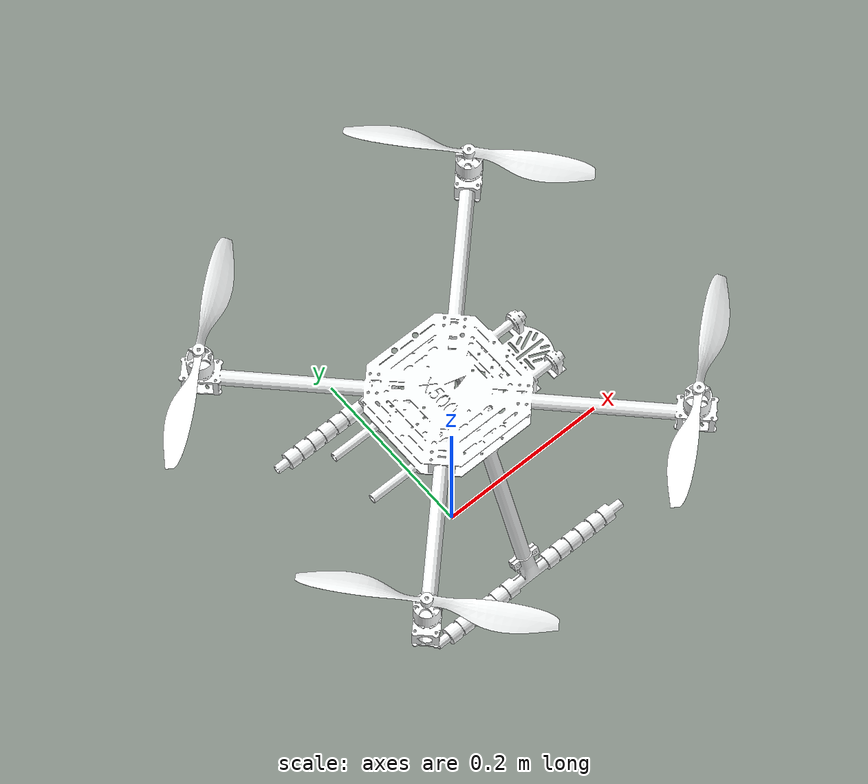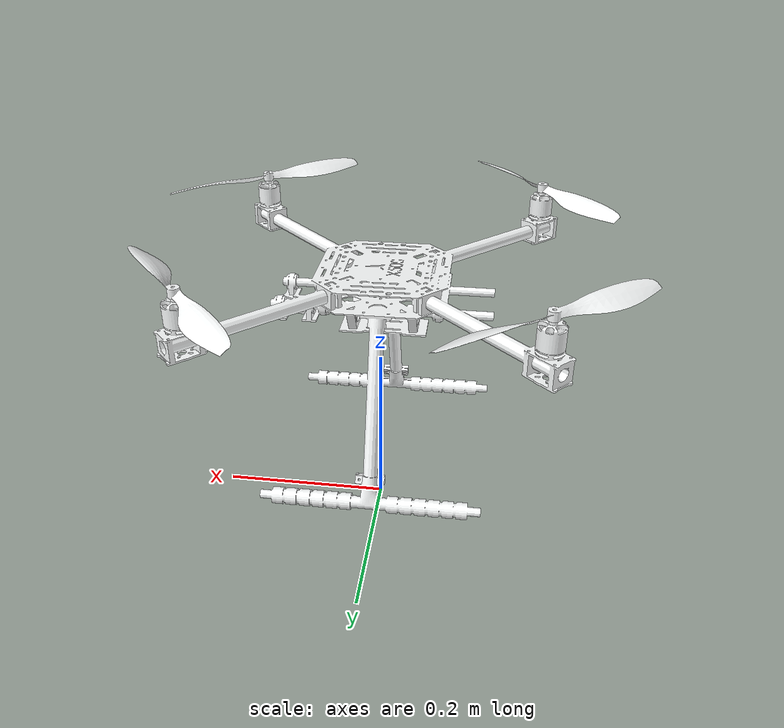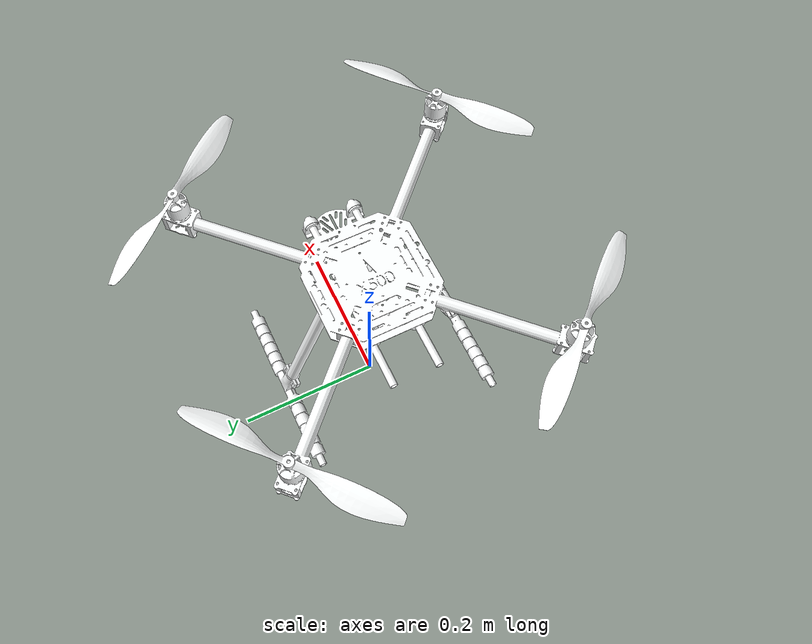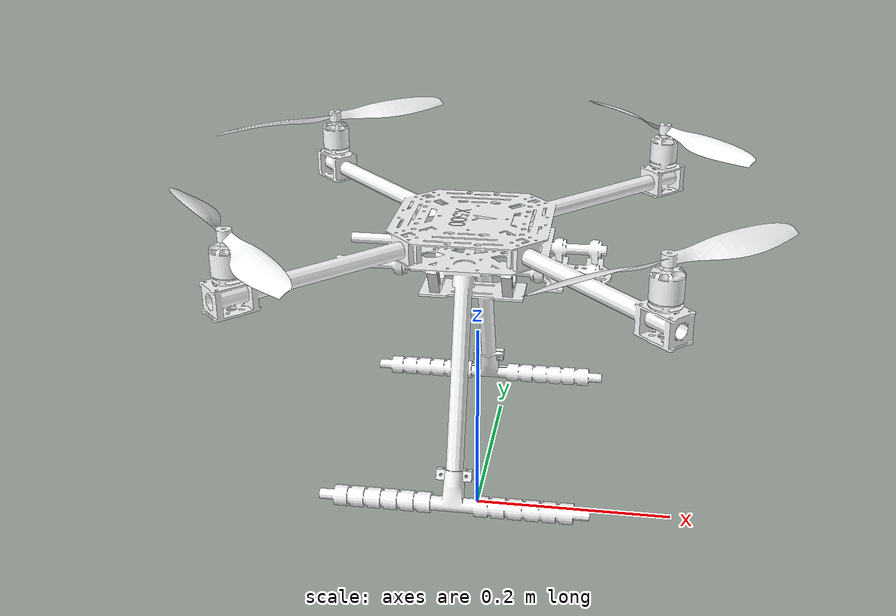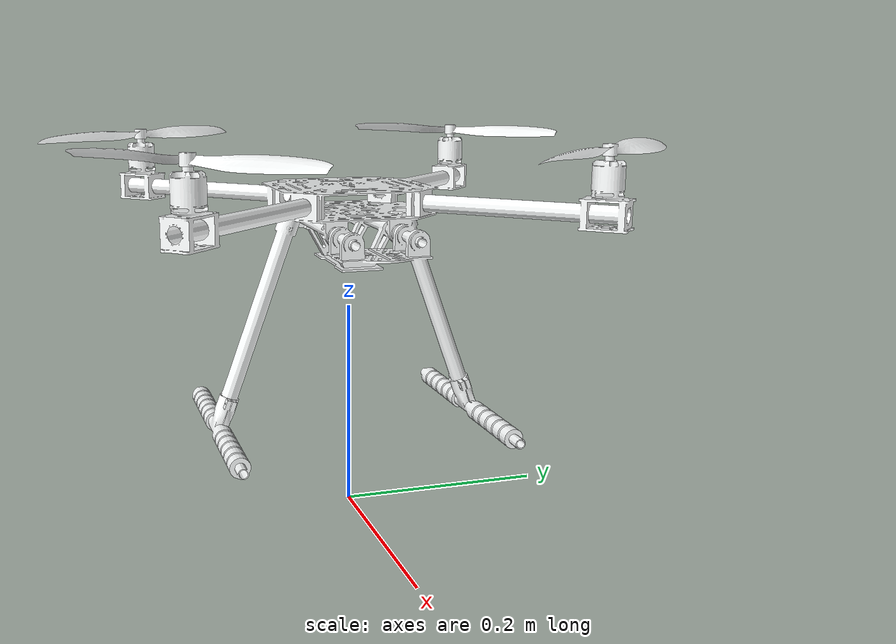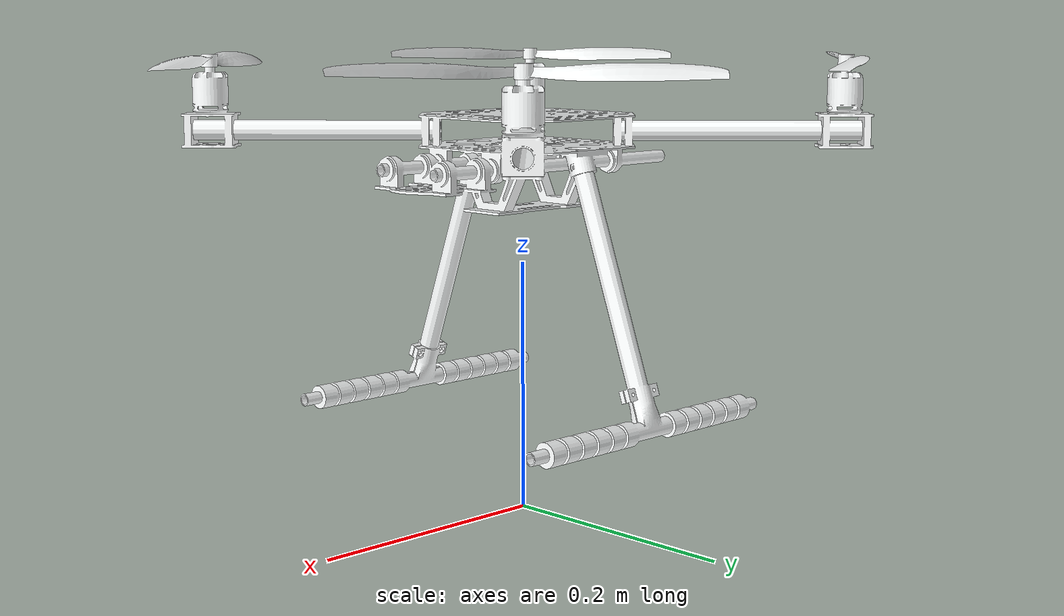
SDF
<?xml version="1.0" encoding="UTF-8"?>
<sdf version='1.9'>
<model name='x500_base'>
 <pose>0 0 .24 0 0 0</pose>
    <self_collide>false</self_collide>
    <static>false</static>
    <link name='base_link'>
      <inertial>
        <pose>0.00024707 6.1734000000000002e-08 -0.0066068000000000003 0 0 0</pose>
               <mass>2.0</mass>
        <inertia>
          <ixx>0.00023214000000000001</ixx>
          <ixy>6.0879e-09</ixy>
          <ixz>-2.1563000000000001e-14</ixz>
          <iyy>0.00041533999999999999</iyy>
          <iyz>-8.5802999999999994e-15</iyz>
          <izz>0.00051197999999999999</izz>
        </inertia>
      </inertial>
      <gravity>true</gravity>
      <velocity_decay/>
      <collision name='base_link_collision'>
        <pose>0 0 0 0 0 0</pose>
        <geometry>
          <mesh>
            <scale>1 1 1</scale>
            <uri>model://x500_base/meshes/base_link.STL</uri>
          </mesh>
        </geometry>
        <surface>
          <contact>
            <ode>
              <min_depth>0.001</min_depth>
              <max_vel>0</max_vel>
            </ode>
          </contact>
          <friction>
            <ode/>
          </friction>
        </surface>
      </collision>
      <sensor name="air_pressure_sensor" type="air_pressure">
        <always_on>1</always_on>
        <update_rate>50</update_rate>
        <air_pressure>
          <pressure>
            <noise type="gaussian">
              <mean>0</mean>
              <stddev>0.01</stddev>
            </noise>
          </pressure>
        </air_pressure>
      </sensor>
      <sensor name="imu_sensor" type="imu">
        <always_on>1</always_on>
        <update_rate>250</update_rate>
        <imu>
          <angular_velocity>
            <x>
              <noise type="gaussian">
                <mean>0</mean>
                <stddev>0.00018665</stddev>
                <dynamic_bias_stddev>3.8785e-05</dynamic_bias_stddev>
                <dynamic_bias_correlation_time>1000</dynamic_bias_correlation_time>
              </noise>
            </x>
            <y>
              <noise type="gaussian">
                <mean>0</mean>
                <stddev>0.00018665</stddev>
                <dynamic_bias_stddev>3.8785e-05</dynamic_bias_stddev>
                <dynamic_bias_correlation_time>1000</dynamic_bias_correlation_time>
              </noise>
            </y>
            <z>
              <noise type="gaussian">
                <mean>0</mean>
                <stddev>0.00018665</stddev>
                <dynamic_bias_stddev>3.8785e-05</dynamic_bias_stddev>
                <dynamic_bias_correlation_time>1000</dynamic_bias_correlation_time>
              </noise>
            </z>
          </angular_velocity>
          <linear_acceleration>
            <x>
              <noise type="gaussian">
                <mean>0</mean>
                <stddev>0.00186</stddev>
                <dynamic_bias_stddev>0.006</dynamic_bias_stddev>
                <dynamic_bias_correlation_time>300</dynamic_bias_correlation_time>
              </noise>
            </x>
            <y>
              <noise type="gaussian">
                <mean>0</mean>
                <stddev>0.00186</stddev>
                <dynamic_bias_stddev>0.006</dynamic_bias_stddev>
                <dynamic_bias_correlation_time>300</dynamic_bias_correlation_time>
              </noise>
            </y>
            <z>
              <noise type="gaussian">
                <mean>0</mean>
                <stddev>0.00186</stddev>
                <dynamic_bias_stddev>0.006</dynamic_bias_stddev>
                <dynamic_bias_correlation_time>300</dynamic_bias_correlation_time>
              </noise>
            </z>
          </linear_acceleration>
        </imu>
      </sensor>
      <sensor name="navsat_sensor" type="navsat">
        <always_on>1</always_on>
        <update_rate>30</update_rate>
      </sensor>
      <visual name='base_link_visual'>
        <pose>0 0 0 0 0 0</pose>
        <geometry>
          <mesh>
            <scale>1 1 1</scale>
            <uri>model://x500_base/meshes/base_link.STL</uri>
          </mesh>
        </geometry>
        <material>
          <diffuse>0.990199983 1 1 1</diffuse>
          <ambient>0.990199983 1 1 1</ambient>
        </material>
      </visual>
    </link>
    <joint name='rotor_0_joint' type='revolute'>
      <pose relative_to='base_link'>0.17188000000000001 -0.17638999999999999 0.11416999999999999 0 0 0</pose>
      <parent>base_link</parent>
      <child>rotor_0_link</child>
      <axis>
        <xyz>0 0 1</xyz>
        <limit>
           <lower>-1e+16</lower>
          <upper>1e+16</upper>
        </limit>
        <dynamics>
          <spring_reference>0</spring_reference>
          <spring_stiffness>0</spring_stiffness>
        </dynamics>
      </axis>
    </joint>
    <link name='rotor_0_link'>
     <gravity>true</gravity>
      <self_collide>false</self_collide>
      <velocity_decay/>
      <pose relative_to='rotor_0_joint'>0 0 0 0 0 0</pose>
      <inertial>
        <pose>-2.8982000000000001e-08 -2.8279999999999999e-08 0.0061728 0 0 0</pose>
          <mass>0.016076923076923075</mass>
             <inertia>
          <ixx>8.3965e-06</ixx>
          <ixy>-1.0525e-05</ixy>
          <ixz>6.0789000000000002e-14</ixz>
          <iyy>1.3599e-05</iyy>
          <iyz>-1.0805e-13</iyz>
          <izz>2.1931000000000001e-05</izz>
        </inertia>
      </inertial>
      <collision name='rotor_0_link_collision'>
        <pose>0 0 0 0 0 0</pose>
        <geometry>
          <mesh>
            <scale>1 1 1</scale>
            <uri>model://x500_base/meshes/rotor_0_link.STL</uri>
          </mesh>
        </geometry>
        <surface>
          <contact>
            <ode>
              <min_depth>0.001</min_depth>
              <max_vel>0</max_vel>
            </ode>
          </contact>
          <friction>
            <ode/>
          </friction>
        </surface>
      </collision>
      <visual name='rotor_0_link_visual'>
        <pose>0 0 0 0 0 0</pose>
        <geometry>
          <mesh>
            <scale>1 1 1</scale>
            <uri>model://x500_base/meshes/rotor_0_link.STL</uri>
          </mesh>
        </geometry>
        <material>
          <diffuse>0.990199983 1 1 1</diffuse>
          <ambient>0.990199983 1 1 1</ambient>
        </material>
      </visual>
    </link>
    <joint name='rotor_1_joint' type='revolute'>
      <pose relative_to='base_link'>0.17188000000000001 0.17638000000000001 0.11416999999999999 0 0 0</pose>
      <parent>base_link</parent>
      <child>rotor_1_link</child>
      <axis>
        <xyz>0 0 1</xyz>
        <limit>
         <lower>-1e+16</lower>
          <upper>1e+16</upper>
        </limit>
        <dynamics>
          <spring_reference>0</spring_reference>
          <spring_stiffness>0</spring_stiffness>
        </dynamics>
      </axis>
    </joint>
    <link name='rotor_1_link'>
    <gravity>true</gravity>
      <self_collide>false</self_collide>
      <velocity_decay/>
      <pose relative_to='rotor_1_joint'>0 0 0 0 0 0</pose>
      <inertial>
        <pose>2.8562000000000001e-08 -2.9315000000000001e-08 0.0061728 0 0 0</pose>
          <mass>0.016076923076923075</mass>
                <inertia>
          <ixx>1.3599e-05</ixx>
          <ixy>1.0525e-05</ixy>
          <ixz>1.0883e-13</ixz>
          <iyy>8.3965e-06</iyy>
          <iyz>5.9861000000000006e-14</iyz>
          <izz>2.1931000000000001e-05</izz>
        </inertia>
      </inertial>
      <collision name='rotor_1_link_collision'>
        <pose>0 0 0 0 0 0</pose>
        <geometry>
          <mesh>
            <scale>1 1 1</scale>
            <uri>model://x500_base/meshes/rotor_1_link.STL</uri>
          </mesh>
        </geometry>
        <surface>
          <contact>
            <ode>
              <min_depth>0.001</min_depth>
              <max_vel>0</max_vel>
            </ode>
          </contact>
          <friction>
            <ode/>
          </friction>
        </surface>
      </collision>
      <visual name='rotor_1_link_visual'>
        <pose>0 0 0 0 0 0</pose>
        <geometry>
          <mesh>
            <scale>1 1 1</scale>
            <uri>model://x500_base/meshes/rotor_1_link.STL</uri>
          </mesh>
        </geometry>
        <material>
          <diffuse>0.990199983 1 1 1</diffuse>
          <ambient>0.990199983 1 1 1</ambient>
        </material>
      </visual>
    </link>
    <joint name='rotor_2_joint' type='revolute'>
      <pose relative_to='base_link'>-0.18089 -0.17638999999999999 0.11416999999999999 0 0 0</pose>
      <parent>base_link</parent>
      <child>rotor_2_link</child>
      <axis>
        <xyz>0 0 1</xyz>
        <limit>
          <lower>-1e+16</lower>
          <upper>1e+16</upper>
        </limit>
        <dynamics>
          <spring_reference>0</spring_reference>
          <spring_stiffness>0</spring_stiffness>
        </dynamics>
      </axis>
    </joint>
    <link name='rotor_2_link'>
    <gravity>true</gravity>
      <self_collide>false</self_collide>
      <velocity_decay/>
      <pose relative_to='rotor_2_joint'>0 0 0 0 0 0</pose>
      <inertial>
        <pose>-2.8562000000000001e-08 2.9315000000000001e-08 0.0061728 0 0 0</pose>
          <mass>0.016076923076923075</mass>
                  <inertia>
          <ixx>1.3599e-05</ixx>
          <ixy>1.0525e-05</ixy>
          <ixz>-1.0883e-13</ixz>
          <iyy>8.3965e-06</iyy>
          <iyz>-5.9861000000000006e-14</iyz>
          <izz>2.1931000000000001e-05</izz>
        </inertia>
      </inertial>
      <collision name='rotor_2_link_collision'>
        <pose>0 0 0 0 0 0</pose>
        <geometry>
          <mesh>
            <scale>1 1 1</scale>
            <uri>model://x500_base/meshes/rotor_2_link.STL</uri>
          </mesh>
        </geometry>
         <surface>
          <contact>
            <ode>
              <min_depth>0.001</min_depth>
              <max_vel>0</max_vel>
            </ode>
          </contact>
          <friction>
            <ode/>
          </friction>
        </surface>
      </collision>
      <visual name='rotor_2_link_visual'>
        <pose>0 0 0 0 0 0</pose>
        <geometry>
          <mesh>
            <scale>1 1 1</scale>
            <uri>model://x500_base/meshes/rotor_2_link.STL</uri>
          </mesh>
        </geometry>
        <material>
          <diffuse>0.990199983 1 1 1</diffuse>
          <ambient>0.990199983 1 1 1</ambient>
        </material>
      </visual>
    </link>
    <joint name='rotor_3_joint' type='revolute'>
      <pose relative_to='base_link'>-0.18089 0.17638000000000001 0.11416999999999999 0 0 0</pose>
      <parent>base_link</parent>
      <child>rotor_3_link</child>
      <axis>
        <xyz>0 0 1</xyz>
        <limit>
         <lower>-1e+16</lower>
          <upper>1e+16</upper>
        </limit>
        <dynamics>
          <spring_reference>0</spring_reference>
          <spring_stiffness>0</spring_stiffness>
        </dynamics>
      </axis>
    </joint>
    <link name='rotor_3_link'>
     <gravity>true</gravity>
      <self_collide>false</self_collide>
      <velocity_decay/>
      <pose relative_to='rotor_3_joint'>0 0 0 0 0 0</pose>
      <inertial>
        <pose>2.8982000000000001e-08 2.8279999999999999e-08 0.0061728 0 0 0</pose>
          <mass>0.016076923076923075</mass>
                  <inertia>
          <ixx>8.3965e-06</ixx>
          <ixy>-1.0525e-05</ixy>
          <ixz>-6.0789000000000002e-14</ixz>
          <iyy>1.3599e-05</iyy>
          <iyz>1.0805e-13</iyz>
          <izz>2.1931000000000001e-05</izz>
        </inertia>
      </inertial>
      <collision name='rotor_3_link_collision'>
        <pose>0 0 0 0 0 0</pose>
        <geometry>
          <mesh>
            <scale>1 1 1</scale>
            <uri>model://x500_base/meshes/rotor_3_link.STL</uri>
          </mesh>
        </geometry>
         <surface>
          <contact>
            <ode>
              <min_depth>0.001</min_depth>
              <max_vel>0</max_vel>
            </ode>
          </contact>
          <friction>
            <ode/>
          </friction>
        </surface>
      </collision>
      <visual name='rotor_3_link_visual'>
        <pose>0 0 0 0 0 0</pose>
        <geometry>
          <mesh>
            <scale>1 1 1</scale>
            <uri>model://x500_base/meshes/rotor_3_link.STL</uri>
          </mesh>
        </geometry>
        <material>
          <diffuse>0.990199983 1 1 1</diffuse>
          <ambient>0.990199983 1 1 1</ambient>
        </material>
      </visual>
    </link>
  </model>
</sdf>
